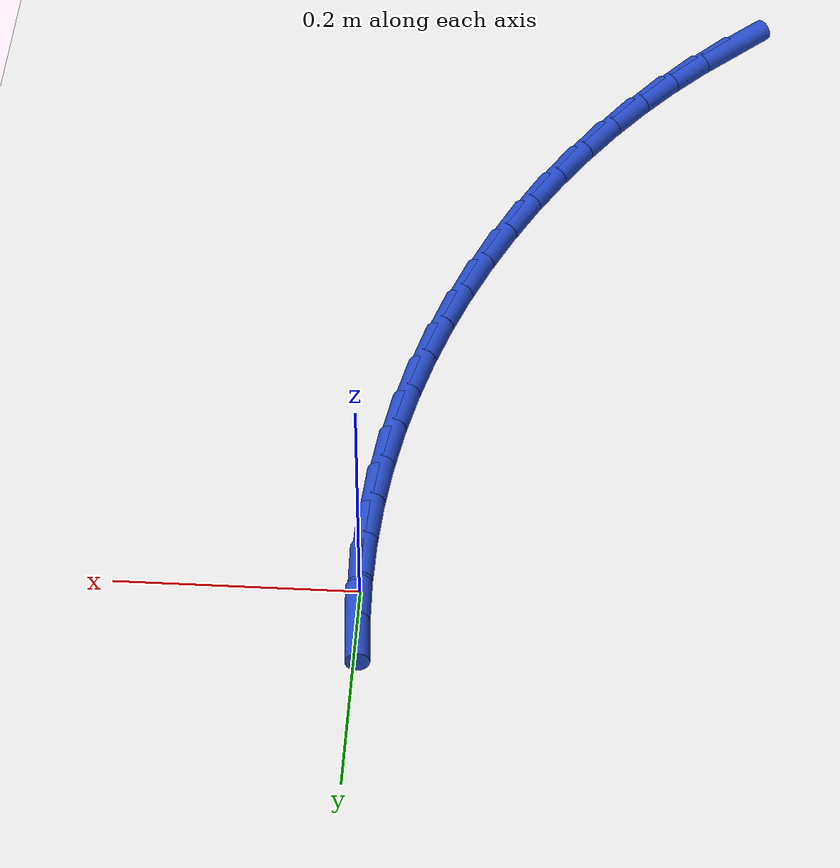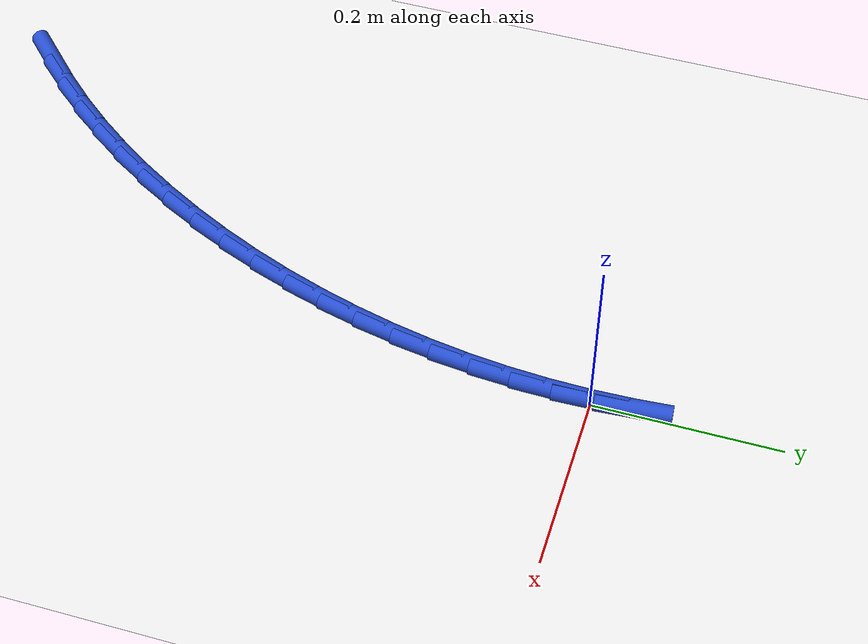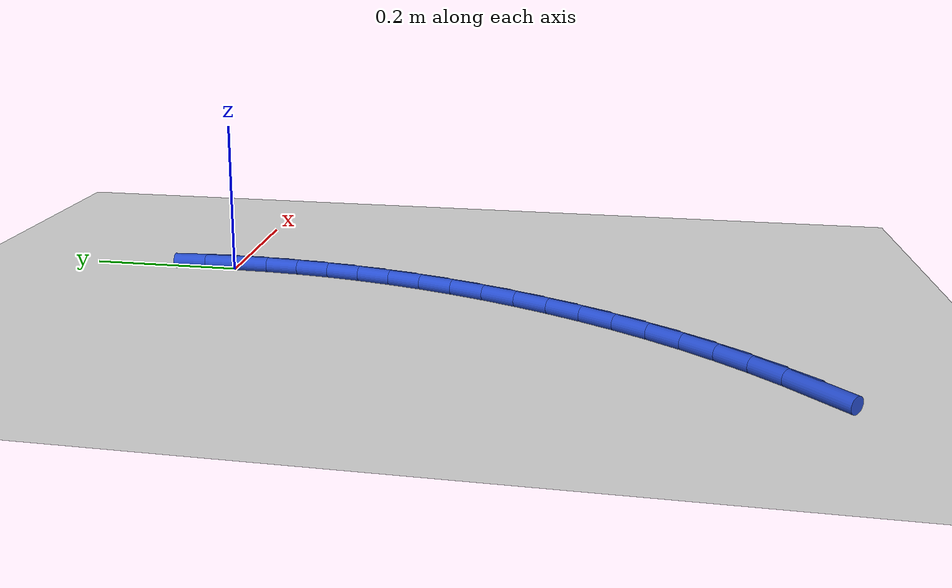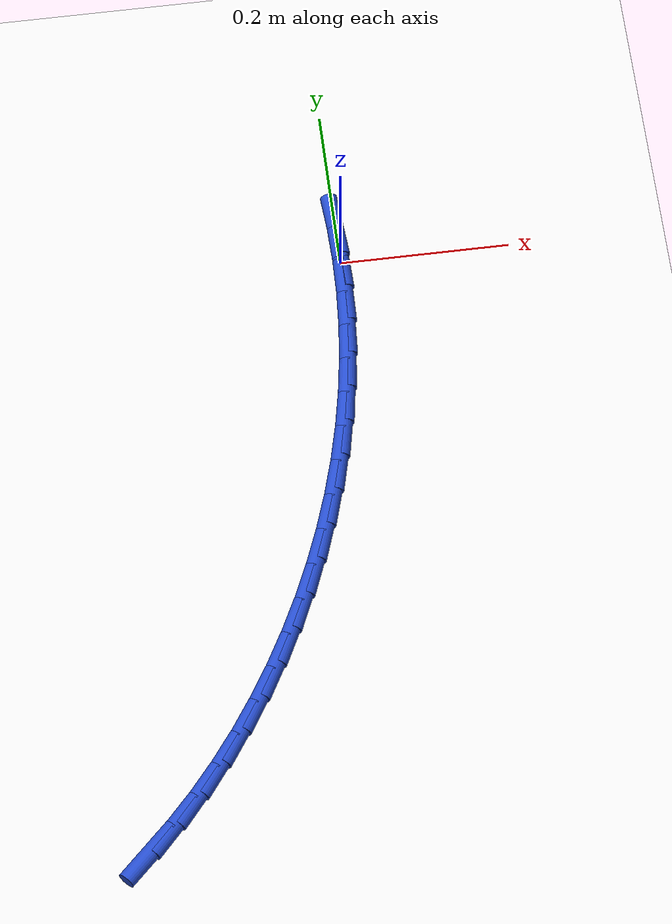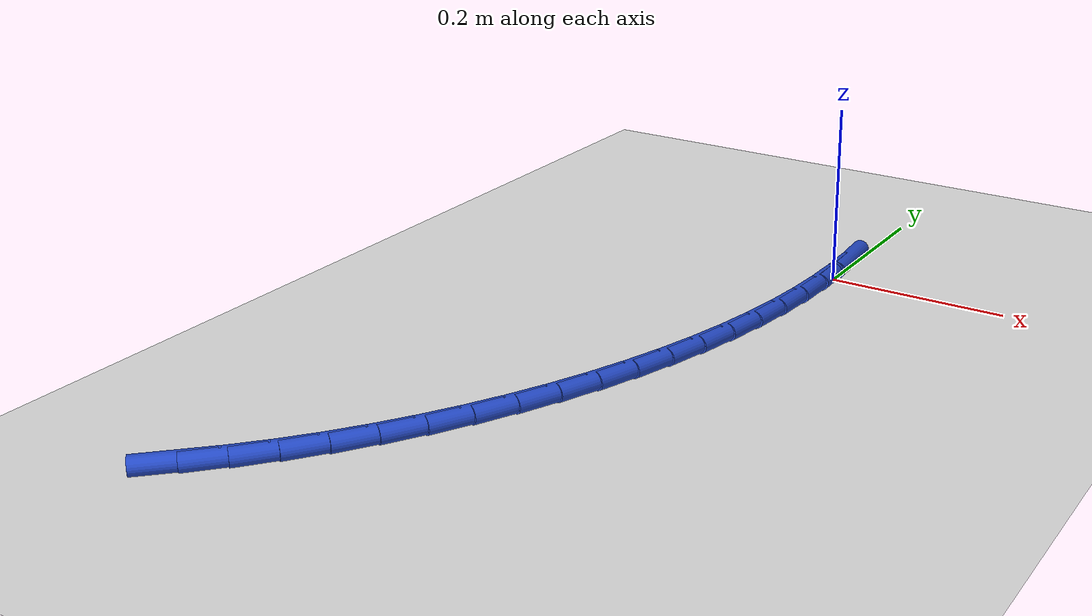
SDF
<sdf version="1.6">
 <world name="default">
  <model name="ground_plane">
   <static>1</static>
   <link name="link">
    <collision name="collision">
     <geometry><plane><normal>0 0 1</normal><size>100 100</size></plane></geometry>
     <surface><friction><ode><mu>100</mu><mu2>50</mu2></ode></friction></surface>
    </collision>
    <visual name="visual">
     <cast_shadows>0</cast_shadows>
     <geometry><plane><normal>0 0 1</normal><size>100 100</size></plane></geometry>
     <material>
      <script><uri>file://media/materials/scripts/gazebo.material</uri><name>Gazebo/WhiteGlow</name></script>
     </material>
    </visual>
   </link>
  </model>
  <model name="line">
   <link name="link_0">
    <pose>3.469446951953614e-18 6.938893903907228e-18 0.01 0 1.57 -1.5439821003446859</pose>
    <collision name="collision">
     <geometry><cylinder><radius>0.01</radius><length>0.08</length></cylinder></geometry>
    </collision>
    <visual name="visual">
     <material>
      <script><name>Gazebo/Blue</name><uri>file://media/materials/scripts/gazebo.material</uri></script>
     </material>
     <geometry><cylinder><radius>0.01</radius><length>0.08</length></cylinder></geometry>
    </visual>
   </link>
   <link name="link_1">
    <pose>-0.0011839507488305542 0.04414324548259012 0.01 0 1.57 -1.499096872646493</pose>
    <collision name="collision">
     <geometry><cylinder><radius>0.01</radius><length>0.08</length></cylinder></geometry>
    </collision>
    <visual name="visual">
     <material>
      <script><name>Gazebo/Blue</name><uri>file://media/materials/scripts/gazebo.material</uri></script>
     </material>
     <geometry><cylinder><radius>0.01</radius><length>0.08</length></cylinder></geometry>
    </visual>
   </link>
   <link name="link_152">
    <pose>-0.3006664147595507 -0.7125404259980713 0.01 0 1.57 0.7663782196310117</pose>
    <collision name="collision">
     <geometry><cylinder><radius>0.01</radius><length>0.08</length></cylinder></geometry>
    </collision>
    <visual name="visual">
     <material>
      <script><name>Gazebo/Blue</name><uri>file://media/materials/scripts/gazebo.material</uri></script>
     </material>
     <geometry><cylinder><radius>0.01</radius><length>0.08</length></cylinder></geometry>
    </visual>
   </link>
   <link name="link_153">
    <pose>-0.2702529725870161 -0.6832624482012017 0.01 0 1.57 0.8206128606538474</pose>
    <collision name="collision">
     <geometry><cylinder><radius>0.01</radius><length>0.08</length></cylinder></geometry>
    </collision>
    <visual name="visual">
     <material>
      <script><name>Gazebo/Blue</name><uri>file://media/materials/scripts/gazebo.material</uri></script>
     </material>
     <geometry><cylinder><radius>0.01</radius><length>0.08</length></cylinder></geometry>
    </visual>
   </link>
   <link name="link_154">
    <pose>-0.2411122401065997 -0.6519935283250223 0.01 0 1.57 0.8741810448406102</pose>
    <collision name="collision">
     <geometry><cylinder><radius>0.01</radius><length>0.08</length></cylinder></geometry>
    </collision>
    <visual name="visual">
     <material>
      <script><name>Gazebo/Blue</name><uri>file://media/materials/scripts/gazebo.material</uri></script>
     </material>
     <geometry><cylinder><radius>0.01</radius><length>0.08</length></cylinder></geometry>
    </visual>
   </link>
   <link name="link_155">
    <pose>-0.21330733406404093 -0.6187546985617063 0.01 0 1.57 0.924886527625963</pose>
    <collision name="collision">
     <geometry><cylinder><radius>0.01</radius><length>0.08</length></cylinder></geometry>
    </collision>
    <visual name="visual">
     <material>
      <script><name>Gazebo/Blue</name><uri>file://media/materials/scripts/gazebo.material</uri></script>
     </material>
     <geometry><cylinder><radius>0.01</radius><length>0.08</length></cylinder></geometry>
    </visual>
   </link>
   <link name="link_156">
    <pose>-0.1869097608551435 -0.5837339902615598 0.01 0 1.57 0.9732024822729038</pose>
    <collision name="collision">
     <geometry><cylinder><radius>0.01</radius><length>0.08</length></cylinder></geometry>
    </collision>
    <visual name="visual">
     <material>
      <script><name>Gazebo/Blue</name><uri>file://media/materials/scripts/gazebo.material</uri></script>
     </material>
     <geometry><cylinder><radius>0.01</radius><length>0.08</length></cylinder></geometry>
    </visual>
   </link>
   <link name="link_157">
    <pose>-0.16199114708730158 -0.5471218276320776 0.01 0 1.57 1.01961289648825</pose>
    <collision name="collision">
     <geometry><cylinder><radius>0.01</radius><length>0.08</length></cylinder></geometry>
    </collision>
    <visual name="visual">
     <material>
      <script><name>Gazebo/Blue</name><uri>file://media/materials/scripts/gazebo.material</uri></script>
     </material>
     <geometry><cylinder><radius>0.01</radius><length>0.08</length></cylinder></geometry>
    </visual>
   </link>
   <link name="link_158">
    <pose>-0.1386231193679094 -0.509108634880754 0.01 0 1.57 1.0645785231806677</pose>
    <collision name="collision">
     <geometry><cylinder><radius>0.01</radius><length>0.08</length></cylinder></geometry>
    </collision>
    <visual name="visual">
     <material>
      <script><name>Gazebo/Blue</name><uri>file://media/materials/scripts/gazebo.material</uri></script>
     </material>
     <geometry><cylinder><radius>0.01</radius><length>0.08</length></cylinder></geometry>
    </visual>
   </link>
   <link name="link_159">
    <pose>-0.11687730430436206 -0.46988483621508453 0.01 0 1.57 1.1085414845509916</pose>
    <collision name="collision">
     <geometry><cylinder><radius>0.01</radius><length>0.08</length></cylinder></geometry>
    </collision>
    <visual name="visual">
     <material>
      <script><name>Gazebo/Blue</name><uri>file://media/materials/scripts/gazebo.material</uri></script>
     </material>
     <geometry><cylinder><radius>0.01</radius><length>0.08</length></cylinder></geometry>
    </visual>
   </link>
   <link name="link_160">
    <pose>-0.09682532850405358 -0.4296408558425637 0.01 0 1.57 1.1519314560233138</pose>
    <collision name="collision">
     <geometry><cylinder><radius>0.01</radius><length>0.08</length></cylinder></geometry>
    </collision>
    <visual name="visual">
     <material>
      <script><name>Gazebo/Blue</name><uri>file://media/materials/scripts/gazebo.material</uri></script>
     </material>
     <geometry><cylinder><radius>0.01</radius><length>0.08</length></cylinder></geometry>
    </visual>
   </link>
   <link name="link_161">
    <pose>-0.07853881857437835 -0.3885671179706861 0.01 0 1.57 1.1951726996511014</pose>
    <collision name="collision">
     <geometry><cylinder><radius>0.01</radius><length>0.08</length></cylinder></geometry>
    </collision>
    <visual name="visual">
     <material>
      <script><name>Gazebo/Blue</name><uri>file://media/materials/scripts/gazebo.material</uri></script>
     </material>
     <geometry><cylinder><radius>0.01</radius><length>0.08</length></cylinder></geometry>
    </visual>
   </link>
   <link name="link_162">
    <pose>-0.06208903662439527 -0.3468531409383314 0.01 0 1.57 1.2386277937473702</pose>
    <collision name="collision">
     <geometry><cylinder><radius>0.01</radius><length>0.08</length></cylinder></geometry>
    </collision>
    <visual name="visual">
     <material>
      <script><name>Gazebo/Blue</name><uri>file://media/materials/scripts/gazebo.material</uri></script>
     </material>
     <geometry><cylinder><radius>0.01</radius><length>0.08</length></cylinder></geometry>
    </visual>
   </link>
   <link name="link_163">
    <pose>-0.04752689055983979 -0.30463785784933456 0.01 0 1.57 1.2823940130833646</pose>
    <collision name="collision">
     <geometry><cylinder><radius>0.01</radius><length>0.08</length></cylinder></geometry>
    </collision>
    <visual name="visual">
     <material>
      <script><name>Gazebo/Blue</name><uri>file://media/materials/scripts/gazebo.material</uri></script>
     </material>
     <geometry><cylinder><radius>0.01</radius><length>0.08</length></cylinder></geometry>
    </visual>
   </link>
   <link name="link_164">
    <pose>-0.034872581242903766 -0.2619838872011323 0.01 0 1.57 1.3264798515586516</pose>
    <collision name="collision">
     <geometry><cylinder><radius>0.01</radius><length>0.08</length></cylinder></geometry>
    </collision>
    <visual name="visual">
     <material>
      <script><name>Gazebo/Blue</name><uri>file://media/materials/scripts/gazebo.material</uri></script>
     </material>
     <geometry><cylinder><radius>0.01</radius><length>0.08</length></cylinder></geometry>
    </visual>
   </link>
   <link name="link_165">
    <pose>-0.02414376408356389 -0.21894752141214224 0.01 0 1.57 1.3708924192194216</pose>
    <collision name="collision">
     <geometry><cylinder><radius>0.01</radius><length>0.08</length></cylinder></geometry>
    </collision>
    <visual name="visual">
     <material>
      <script><name>Gazebo/Blue</name><uri>file://media/materials/scripts/gazebo.material</uri></script>
     </material>
     <geometry><cylinder><radius>0.01</radius><length>0.08</length></cylinder></geometry>
    </visual>
   </link>
   <link name="link_166">
    <pose>-0.015358094491797102 -0.1755850529007819 0.01 0 1.57 1.415635753369817</pose>
    <collision name="collision">
     <geometry><cylinder><radius>0.01</radius><length>0.08</length></cylinder></geometry>
    </collision>
    <visual name="visual">
     <material>
      <script><name>Gazebo/Blue</name><uri>file://media/materials/scripts/gazebo.material</uri></script>
     </material>
     <geometry><cylinder><radius>0.01</radius><length>0.08</length></cylinder></geometry>
    </visual>
   </link>
   <link name="link_167">
    <pose>-0.008533227877580372 -0.1319527740854697 0.01 0 1.57 1.460710185197453</pose>
    <collision name="collision">
     <geometry><cylinder><radius>0.01</radius><length>0.08</length></cylinder></geometry>
    </collision>
    <visual name="visual">
     <material>
      <script><name>Gazebo/Blue</name><uri>file://media/materials/scripts/gazebo.material</uri></script>
     </material>
     <geometry><cylinder><radius>0.01</radius><length>0.08</length></cylinder></geometry>
    </visual>
   </link>
   <link name="link_168">
    <pose>-0.0036868196508905654 -0.08810697738462259 0.01 0 1.57 1.5061117238736248</pose>
    <collision name="collision">
     <geometry><cylinder><radius>0.01</radius><length>0.08</length></cylinder></geometry>
    </collision>
    <visual name="visual">
     <material>
      <script><name>Gazebo/Blue</name><uri>file://media/materials/scripts/gazebo.material</uri></script>
     </material>
     <geometry><cylinder><radius>0.01</radius><length>0.08</length></cylinder></geometry>
    </visual>
   </link>
   <link name="link_169">
    <pose>-0.0008365252217048319 -0.04410395521666032 0.01 0 1.57 1.5518314760140792</pose>
    <collision name="collision">
     <geometry><cylinder><radius>0.01</radius><length>0.08</length></cylinder></geometry>
    </collision>
    <visual name="visual">
     <material>
      <script><name>Gazebo/Blue</name><uri>file://media/materials/scripts/gazebo.material</uri></script>
     </material>
     <geometry><cylinder><radius>0.01</radius><length>0.08</length></cylinder></geometry>
    </visual>
   </link>
   <link name="link_170">
    <pose>-1.214306433183765e-17 -6.938893903907228e-17 0.01 0 1.57 -1.5437375329166272</pose>
    <collision name="collision">
     <geometry><cylinder><radius>0.01</radius><length>0.08</length></cylinder></geometry>
    </collision>
    <visual name="visual">
     <material>
      <script><name>Gazebo/Blue</name><uri>file://media/materials/scripts/gazebo.material</uri></script>
     </material>
     <geometry><cylinder><radius>0.01</radius><length>0.08</length></cylinder></geometry>
    </visual>
   </link>
  </model>
 </world>
</sdf>
